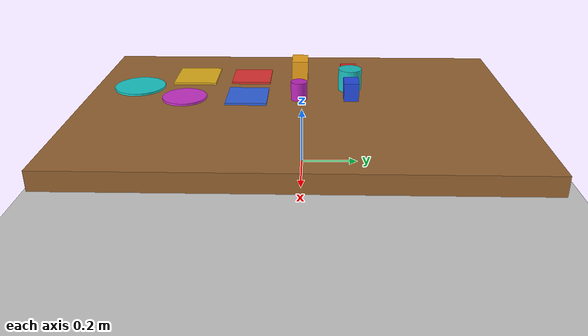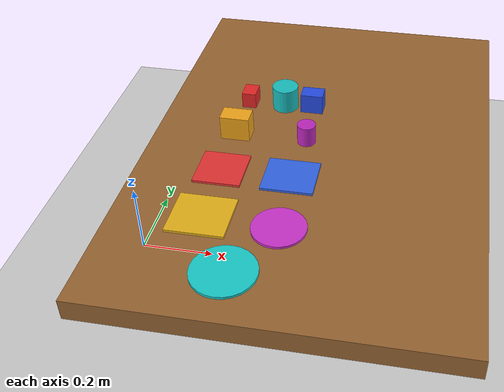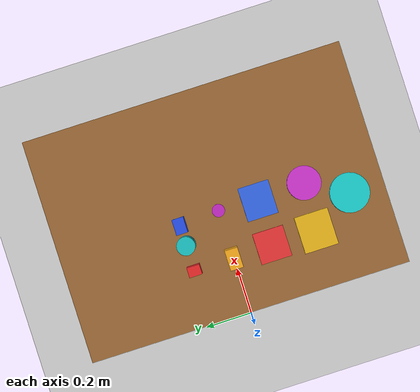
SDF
<?xml version="1.0" ?>
<sdf version="1.9">
  <world name="pick_place_world">
    <physics name="1ms" type="ignored">
      <max_step_size>0.001</max_step_size>
      <real_time_factor>1.0</real_time_factor>
    </physics>
    <plugin filename="gz-sim-physics-system" name="gz::sim::systems::Physics"/>
    <plugin filename="gz-sim-user-commands-system" name="gz::sim::systems::UserCommands"/>
    <plugin filename="gz-sim-scene-broadcaster-system" name="gz::sim::systems::SceneBroadcaster"/>
    <plugin filename="gz-sim-contact-system" name="gz::sim::systems::Contact"/>

    <light name="sun" type="directional">
      <cast_shadows>true</cast_shadows><pose>0 0 10 0 0 0</pose>
      <diffuse>0.8 0.8 0.8 1</diffuse><specular>0.2 0.2 0.2 1</specular>
      <direction>-0.5 0.1 -0.9</direction>
    </light>
    <model name="ground_plane"><static>true</static><link name="link">
      <collision name="collision"><geometry><plane><normal>0 0 1</normal><size>20 20</size></plane></geometry></collision>
      <visual name="visual"><geometry><plane><normal>0 0 1</normal><size>20 20</size></plane></geometry></visual>
    </link></model>

    <!-- Extended horizontal work table; top surface is z=0.425. -->
    <model name="table"><static>true</static><pose>0.5 0 0.4 0 0 1.570796</pose><link name="table_link">
      <collision name="table_collision"><geometry><box><size>1.15 0.80 0.05</size></box></geometry></collision>
      <visual name="table_visual"><geometry><box><size>1.15 0.80 0.05</size></box></geometry><material><diffuse>0.6 0.4 0.2 1</diffuse></material></visual>
    </link></model>

    <!-- Compact negative-Y placement grid; all pads have physical clearance. -->
    <model name="place_pad_box_small"><static>true</static><pose>0.30 -0.14 0.428 0 0 0</pose><link name="link"><collision name="collision"><geometry><box><size>0.11 0.11 0.006</size></box></geometry></collision><visual name="visual"><geometry><box><size>0.11 0.11 0.006</size></box></geometry><material><diffuse>0.9 0.2 0.2 1</diffuse></material></visual></link></model>
    <model name="place_pad_box_medium"><static>true</static><pose>0.46 -0.14 0.428 0 0 0</pose><link name="link"><collision name="collision"><geometry><box><size>0.12 0.11 0.006</size></box></geometry></collision><visual name="visual"><geometry><box><size>0.12 0.11 0.006</size></box></geometry><material><diffuse>0.2 0.4 0.9 1</diffuse></material></visual></link></model>
    <model name="place_pad_box_large"><static>true</static><pose>0.30 -0.30 0.428 0 0 0</pose><link name="link"><collision name="collision"><geometry><box><size>0.13 0.12 0.006</size></box></geometry></collision><visual name="visual"><geometry><box><size>0.13 0.12 0.006</size></box></geometry><material><diffuse>0.9 0.7 0.1 1</diffuse></material></visual></link></model>
    <model name="place_pad_cylinder_small"><static>true</static><pose>0.47 -0.31 0.428 0 0 0</pose><link name="link"><collision name="collision"><geometry><cylinder><radius>0.06</radius><length>0.006</length></cylinder></geometry></collision><visual name="visual"><geometry><cylinder><radius>0.06</radius><length>0.006</length></cylinder></geometry><material><diffuse>0.8 0.2 0.8 1</diffuse></material></visual></link></model>
    <model name="place_pad_cylinder_large"><static>true</static><pose>0.39 -0.45 0.428 0 0 0</pose><link name="link"><collision name="collision"><geometry><cylinder><radius>0.07</radius><length>0.006</length></cylinder></geometry></collision><visual name="visual"><geometry><cylinder><radius>0.07</radius><length>0.006</length></cylinder></geometry><material><diffuse>0.1 0.8 0.8 1</diffuse></material></visual></link></model>

    <!-- Compact positive-Y/centre grasp grid; high friction supports physical two-finger grasps. -->
    <model name="box_small"><pose>0.30 0.14 0.445 0 0 0</pose><link name="object_link"><inertial><mass>0.060</mass><inertia><ixx>0.000014</ixx><iyy>0.000011</iyy><izz>0.000009</izz></inertia></inertial><collision name="collision"><geometry><box><size>0.035 0.045 0.040</size></box></geometry><surface><friction><ode><mu>2.5</mu><mu2>2.5</mu2></ode></friction><contact><ode><kp>1000000</kp><kd>100</kd><max_vel>0.05</max_vel><min_depth>0.0005</min_depth></ode></contact></surface></collision><visual name="visual"><geometry><box><size>0.035 0.045 0.040</size></box></geometry><material><diffuse>0.9 0.15 0.15 1</diffuse></material></visual></link></model>
    <model name="box_medium"><pose>0.46 0.14 0.450 0 0 0</pose><link name="object_link"><inertial><mass>0.090</mass><inertia><ixx>0.000025</ixx><iyy>0.000029</iyy><izz>0.000030</izz></inertia></inertial><collision name="collision"><geometry><box><size>0.055 0.040 0.050</size></box></geometry><surface><friction><ode><mu>2.5</mu><mu2>2.5</mu2></ode></friction></surface></collision><visual name="visual"><geometry><box><size>0.055 0.040 0.050</size></box></geometry><material><diffuse>0.15 0.3 0.9 1</diffuse></material></visual></link></model>
    <model name="box_large"><pose>0.30 0.00 0.455 0 0 0</pose><link name="object_link"><inertial><mass>0.120</mass><inertia><ixx>0.000050</ixx><iyy>0.000064</iyy><izz>0.000057</izz></inertia></inertial><collision name="collision"><geometry><box><size>0.070 0.045 0.060</size></box></geometry><surface><friction><ode><mu>2.5</mu><mu2>2.5</mu2></ode></friction></surface></collision><visual name="visual"><geometry><box><size>0.070 0.045 0.060</size></box></geometry><material><diffuse>0.95 0.65 0.1 1</diffuse></material></visual></link></model>
    <model name="cylinder_small"><pose>0.47 0.00 0.450 0 0 0</pose><link name="object_link"><inertial><mass>0.065</mass><inertia><ixx>0.000017</ixx><iyy>0.000017</iyy><izz>0.000016</izz></inertia></inertial><collision name="collision"><geometry><cylinder><radius>0.022</radius><length>0.050</length></cylinder></geometry><surface><friction><ode><mu>2.5</mu><mu2>2.5</mu2></ode></friction></surface></collision><visual name="visual"><geometry><cylinder><radius>0.022</radius><length>0.050</length></cylinder></geometry><material><diffuse>0.75 0.15 0.75 1</diffuse></material></visual></link></model>
    <model name="cylinder_large"><pose>0.39 0.14 0.455 0 0 0</pose><link name="object_link"><inertial><mass>0.100</mass><inertia><ixx>0.000036</ixx><iyy>0.000036</iyy><izz>0.000051</izz></inertia></inertial><collision name="collision"><geometry><cylinder><radius>0.032</radius><length>0.060</length></cylinder></geometry><surface><friction><ode><mu>2.5</mu><mu2>2.5</mu2></ode></friction></surface></collision><visual name="visual"><geometry><cylinder><radius>0.032</radius><length>0.060</length></cylinder></geometry><material><diffuse>0.1 0.75 0.75 1</diffuse></material></visual></link></model>
  </world>
</sdf>
